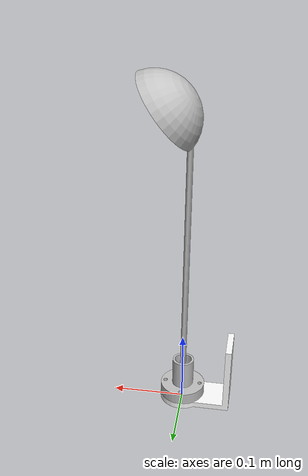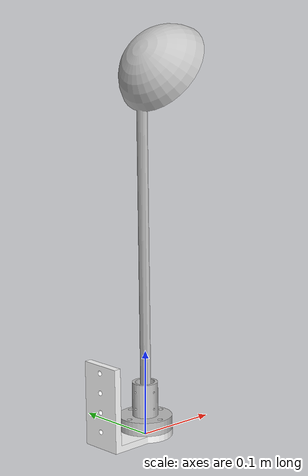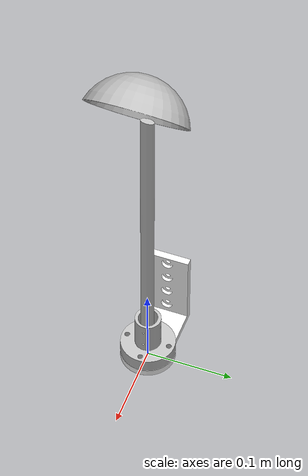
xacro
<?xml version="1.0" encoding="utf-8"?>
<robot xmlns:xacro="http://wiki.ros.org/xacro"
       name="spoon_metal_own">
  <link
    name="spoon_base_link">
    <inertial>
      <origin
        xyz="-0.045836 -3.8109E-06 0.028802"
        rpy="0 0 0" />
      <mass
        value="0.068874" />
      <inertia
        ixx="8.2579E-05"
        ixy="-4.8961E-09"
        ixz="3.4903E-05"
        iyy="0.00012288"
        iyz="6.5831E-09"
        izz="7.4432E-05" />
    </inertial>
    <visual>
      <origin
        xyz="0 0 0"
        rpy="0 0 0" />
      <geometry>
        <mesh
          filename="package://spoon_metal_own/meshes/spoon_base_link.STL" />
      </geometry>
      <material
        name="">
        <color
          rgba="1 1 1 1" />
      </material>
    </visual>
    <collision>
      <origin
        xyz="0 0 0"
        rpy="0 0 0" />
      <geometry>
        <mesh
          filename="package://spoon_metal_own/meshes/spoon_base_link.STL" />
      </geometry>
    </collision>
  </link>
  <link
    name="spoon_body">
    <inertial>
      <origin
        xyz="-0.00041746 0.22889 0.14202"
        rpy="0 0 0" />
      <mass
        value="0.12138" />
      <inertia
        ixx="0.0014566"
        ixy="-7.3538E-11"
        ixz="2.3854E-12"
        iyy="0.00053013"
        iyz="-0.00066462"
        izz="0.00099762" />
    </inertial>
    <visual>
      <origin
        xyz="0 0 0"
        rpy="0 0 0" />
      <geometry>
        <mesh
          filename="package://spoon_metal_own/meshes/spoon_body.STL" />
      </geometry>
      <material
        name="">
        <color
          rgba="0.75294 0.75294 0.75294 1" />
      </material>
    </visual>
    <collision>
      <origin
        xyz="0 0 0"
        rpy="0 0 0" />
      <geometry>
        <mesh
          filename="package://spoon_metal_own/meshes/spoon_body.STL" />
      </geometry>
    </collision>
  </link>
  <joint
    name="spoon_joint"
    type="fixed">
    <origin
      xyz="0.0248 -0.00086523 0.4253"
      rpy="-2.2166 0 -1.5708" />
    <parent
      link="spoon_base_link" />
    <child
      link="spoon_body" />
    <axis
      xyz="0 0 0" />
  </joint>
</robot>
